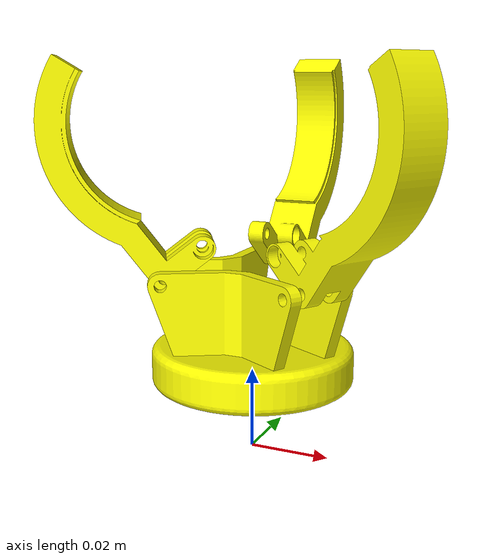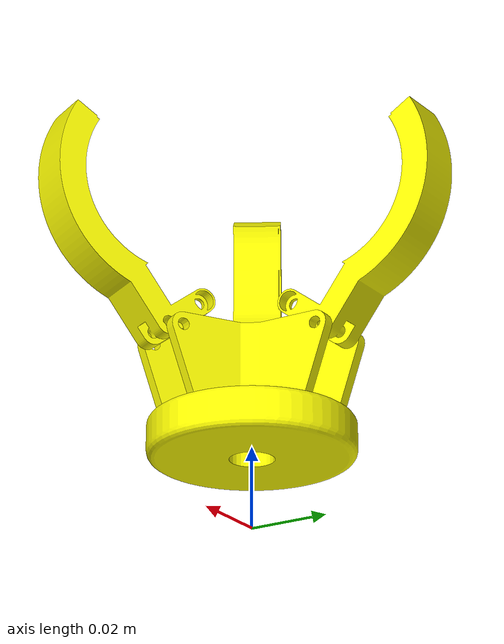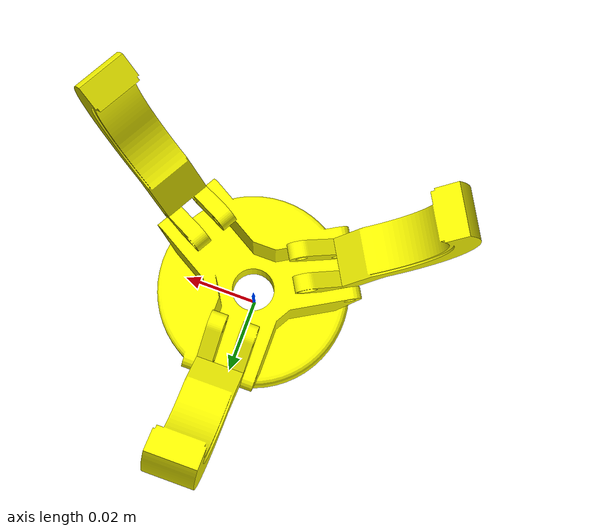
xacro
<?xml version="1.0" encoding="utf-8"?>

<robot xmlns:xacro="http://www.ros.org/wiki/xacro" name="tundra_gripper">

  <xacro:arg name="ns" default=""/>

  <link name="gripper_link"/>

  <link name="palm">
    <inertial>
      <origin rpy="0 3.1415 0" xyz="-0.025 0 -0.003"/>
      <mass value="0.013863"/>
      <inertia ixx="1.3596E-06" ixy="3.0585E-13" ixz="5.7102E-14" iyy="1.7157E-06" iyz="6.3369E-09" izz="2.4332E-06"/>
    </inertial>
    <visual>
      <origin rpy="0 3.1415 0" xyz="-0.025 0 -0.003"/>
      <geometry>
        <mesh filename="package://ar3_description/meshes/gripper_palm.STL" scale="0.01 0.01 0.01"/>
      </geometry>
      <material name="">
        <color rgba="1 1 0 1"/>
      </material>
    </visual>
    <collision>
      <origin rpy="0 3.1415 0" xyz="-0.025 0 -0.003"/>
      <geometry>
        <mesh filename="package://ar3_description/meshes/gripper_palm.STL" scale="0.01 0.01 0.01"/>
      </geometry>
    </collision>
  </link>

  <joint name="palm_joint" type="fixed">
    <origin xyz="0 0 0" rpy="0 0 0"/>
    <parent link="gripper_link"/>
    <child link="palm"/>
  </joint>

  <link name="actuator_1">
      <inertial>
        <origin rpy="0 3.1415 1.0472" xyz="0 0 0.007"/>
        <mass value="0.013863"/>
        <inertia ixx="1.3596E-06" ixy="3.0585E-13" ixz="5.7102E-14" iyy="1.7157E-06" iyz="6.3369E-09" izz="2.4332E-06"/>
      </inertial>
      <visual>
        <origin rpy="0 3.1415 1.0472" xyz="0 0 0.007"/>
        <geometry>
          <mesh filename="package://ar3_description/meshes/gripper_link.STL" scale="0.01 0.01 0.01"/>
        </geometry>
        <material name="">
          <color rgba="1 1 0 1"/>
        </material>
      </visual>
      <collision>
        <origin rpy="0 3.1415 1.0472" xyz="0 0 0.007"/>
        <geometry>
          <mesh filename="package://ar3_description/meshes/gripper_link.STL" scale="0.01 0.01 0.01"/>
        </geometry>
      </collision>
    </link>
    <joint name="actuator_joint_1" type="revolute">
      <origin rpy="0 0 3.1416" xyz="0.0195 -0.0124 0.043"/>
      <parent link="palm"/>
      <child link="actuator_1"/>
      <axis xyz="0.5235 1.0471 0"/>
      <limit lower="-0.523" upper="0.7854" effort="100" velocity="100"/>
    </joint>

    <link name="actuator_2">
      <inertial>
        <origin rpy="0 3.1415 2.094" xyz="0 0 0.007"/>
        <mass value="0.013863"/>
        <inertia ixx="1.3596E-06" ixy="3.0585E-13" ixz="5.7102E-14" iyy="1.7157E-06" iyz="6.3369E-09" izz="2.4332E-06"/>
      </inertial>
      <visual>
        <origin rpy="0 3.1415 2.094" xyz="0 0 0.007"/>
        <geometry>
          <mesh filename="package://ar3_description/meshes/gripper_link.STL" scale="0.01 0.01 0.01"/>
        </geometry>
        <material name="">
          <color rgba="1 1 0 1"/>
        </material>
      </visual>
      <collision>
        <origin rpy="0 3.1415 2.094" xyz="0 0 0.007"/>
        <geometry>
          <mesh filename="package://ar3_description/meshes/gripper_link.STL" scale="0.01 0.01 0.01"/>
        </geometry>
      </collision>
    </link>
    <joint name="actuator_joint_2" type="revolute">
      <origin rpy="0 0 0" xyz="-0.0175 -0.009 0.043"/>
      <parent link="palm"/>
      <child link="actuator_2"/>
      <axis xyz="-0.5235 1.0471 0"/>
      <limit lower="-0.523" upper="0.7854" effort="100" velocity="100"/>
    </joint>

    <link name="actuator_3">
      <inertial>
        <origin rpy="0 3.1415 0" xyz="0 -0.001 0.007"/>
        <mass value="0.013863"/>
        <inertia ixx="1.3596E-06" ixy="3.0585E-13" ixz="5.7102E-14" iyy="1.7157E-06" iyz="6.3369E-09" izz="2.4332E-06"/>
      </inertial>
      <visual>
        <origin rpy="0 3.1415 0" xyz="0 -0.001 0.007"/>
        <geometry>
          <mesh filename="package://ar3_description/meshes/gripper_link.STL" scale="0.01 0.01 0.01"/>
        </geometry>
        <material name="">
          <color rgba="1 1 0 1"/>
        </material>
      </visual>
      <collision>
        <origin rpy="0 3.1415 0" xyz="0 -0.001 0.007"/>
        <geometry>
          <mesh filename="package://ar3_description/meshes/gripper_link.STL" scale="0.01 0.01 0.01"/>
        </geometry>
      </collision>
    </link>
    <joint name="actuator_joint_3" type="revolute">
      <origin rpy="0 0 0" xyz="0.001 0.022 0.043"/>
      <parent link="palm"/>
      <child link="actuator_3"/>
      <axis xyz="1 0 0"/>
      <limit lower="-0.523" upper="0.7854" effort="100" velocity="100"/>
    </joint>

    <transmission name="transmission_1">
        <type>transmission_interface/SimpleTransmission</type>
        <joint name="actuator_joint_1">
            <hardwareInterface>hardware_interface/PositionJointInterface</hardwareInterface>
        </joint>
        <actuator name="motor_1">
            <hardwareInterface>hardware_interface/PositionJointInterface</hardwareInterface>
            <mechanicalReduction>1</mechanicalReduction>
        </actuator>
    </transmission>

    <transmission name="transmission_2">
        <type>transmission_interface/SimpleTransmission</type>
        <joint name="actuator_joint_2">
            <hardwareInterface>hardware_interface/PositionJointInterface</hardwareInterface>
        </joint>
        <actuator name="motor_2">
            <hardwareInterface>hardware_interface/PositionJointInterface</hardwareInterface>
            <mechanicalReduction>1</mechanicalReduction>
        </actuator>
    </transmission>

    <transmission name="transmission_3">
        <type>transmission_interface/SimpleTransmission</type>
        <joint name="actuator_joint_3">
            <hardwareInterface>hardware_interface/PositionJointInterface</hardwareInterface>
        </joint>
        <actuator name="motor_3">
            <hardwareInterface>hardware_interface/PositionJointInterface</hardwareInterface>
            <mechanicalReduction>1</mechanicalReduction>
        </actuator>
    </transmission>

    <gazebo>
      <plugin name="gazebo_ros_control" filename="libgazebo_ros_control.so">
        <robotNamespace>$(arg ns)/gripper</robotNamespace>
      </plugin>
    </gazebo>

    <gazebo>
    <plugin name="gazebo_grasp_fix" filename="libgazebo_grasp_fix.so">
          <arm>
            <arm_name>tundra_gripper</arm_name>
            <palm_link>link_6</palm_link> <!-- Gazebo combines everything with a fixed joint -->
            <gripper_link> actuator_1 </gripper_link>
            <gripper_link> actuator_2 </gripper_link>
            <gripper_link> actuator_3 </gripper_link>
          </arm>
        <forces_angle_tolerance>100</forces_angle_tolerance>
        <update_rate>10</update_rate>
        <grip_count_threshold>1</grip_count_threshold>
        <max_grip_count>4</max_grip_count>
        <release_tolerance>0.009</release_tolerance>
        <disable_collisions_on_attach>false</disable_collisions_on_attach>
        <contact_topic>__default_topic__</contact_topic>
      </plugin>
    </gazebo>

    <gazebo reference="actuator_1">
        <selfCollide>true</selfCollide>
    </gazebo>
    <gazebo reference="actuator_2">
        <selfCollide>true</selfCollide>
    </gazebo>
      <gazebo reference="actuator_3">
        <selfCollide>true</selfCollide>
    </gazebo>
</robot>
